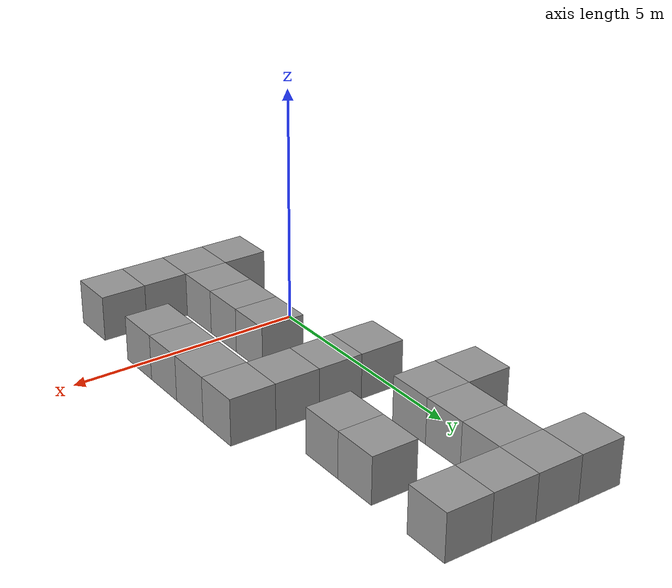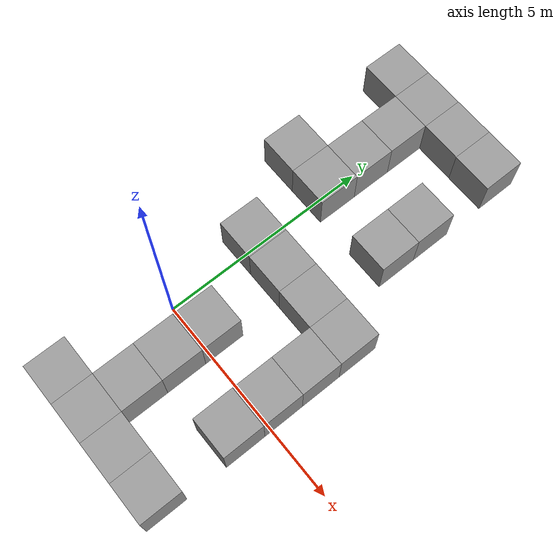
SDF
<sdf version="1.7">
 <model name="maze1">
  <link name="link_1_clone_138">
   <inertial>
    <mass>1</mass>
    <inertia>
     <ixx>0.166667</ixx>
     <ixy>0</ixy>
     <ixz>0</ixz>
     <iyy>0.166667</iyy>
     <iyz>0</iyz>
     <izz>0.166667</izz>
    </inertia>
   </inertial>
   <pose>2.75382 0.374651 0 0 -0 0</pose>
   <visual name="visual">
    <geometry><box><size>1 1 1</size></box></geometry>
    <material>
     <lighting>1</lighting>
     <script><uri>file://media/materials/scripts/gazebo.material</uri><name>Gazebo/Grey</name></script>
     <shader type="pixel"><normal_map>__default__</normal_map></shader>
     <ambient>0.3 0.3 0.3 1</ambient>
     <diffuse>0.7 0.7 0.7 1</diffuse>
     <specular>0.01 0.01 0.01 1</specular>
     <emissive>0 0 0 1</emissive>
    </material>
   </visual>
   <collision name="collision">
    <geometry><box><size>1 1 1</size></box></geometry>
    <surface>
     <friction>
      <ode><mu>1</mu><mu2>1</mu2><fdir1>0 0 0</fdir1><slip1>0</slip1><slip2>0</slip2></ode>
      <torsional>
       <coefficient>1</coefficient>
       <patch_radius>0</patch_radius>
       <surface_radius>0</surface_radius>
       <use_patch_radius>1</use_patch_radius>
       <ode><slip>0</slip></ode>
      </torsional>
     </friction>
     <bounce><restitution_coefficient>0</restitution_coefficient><threshold>1e+06</threshold></bounce>
     <contact>
      <collide_without_contact>0</collide_without_contact>
      <collide_without_contact_bitmask>1</collide_without_contact_bitmask>
      <collide_bitmask>1</collide_bitmask>
      <ode>
       <soft_cfm>0</soft_cfm>
       <soft_erp>0.2</soft_erp>
       <kp>1e+13</kp>
       <kd>1</kd>
       <max_vel>0.01</max_vel>
       <min_depth>0</min_depth>
      </ode>
      <bullet>
       <split_impulse>1</split_impulse>
       <split_impulse_penetration_threshold>-0.01</split_impulse_penetration_threshold>
       <soft_cfm>0</soft_cfm>
       <soft_erp>0.2</soft_erp>
       <kp>1e+13</kp>
       <kd>1</kd>
      </bullet>
     </contact>
    </surface>
   </collision>
  </link>
  <link name="link_1_clone_139">
   <inertial>
    <mass>1</mass>
    <inertia>
     <ixx>0.166667</ixx>
     <ixy>0</ixy>
     <ixz>0</ixz>
     <iyy>0.166667</iyy>
     <iyz>0</iyz>
     <izz>0.166667</izz>
    </inertia>
   </inertial>
   <pose>2.75382 1.37465 0 0 -0 0</pose>
   <visual name="visual">
    <geometry><box><size>1 1 1</size></box></geometry>
    <material>
     <lighting>1</lighting>
     <script><uri>file://media/materials/scripts/gazebo.material</uri><name>Gazebo/Grey</name></script>
     <shader type="pixel"><normal_map>__default__</normal_map></shader>
     <ambient>0.3 0.3 0.3 1</ambient>
     <diffuse>0.7 0.7 0.7 1</diffuse>
     <specular>0.01 0.01 0.01 1</specular>
     <emissive>0 0 0 1</emissive>
    </material>
   </visual>
   <collision name="collision">
    <geometry><box><size>1 1 1</size></box></geometry>
    <surface>
     <friction>
      <ode><mu>1</mu><mu2>1</mu2><fdir1>0 0 0</fdir1><slip1>0</slip1><slip2>0</slip2></ode>
      <torsional>
       <coefficient>1</coefficient>
       <patch_radius>0</patch_radius>
       <surface_radius>0</surface_radius>
       <use_patch_radius>1</use_patch_radius>
       <ode><slip>0</slip></ode>
      </torsional>
     </friction>
     <bounce><restitution_coefficient>0</restitution_coefficient><threshold>1e+06</threshold></bounce>
     <contact>
      <collide_without_contact>0</collide_without_contact>
      <collide_without_contact_bitmask>1</collide_without_contact_bitmask>
      <collide_bitmask>1</collide_bitmask>
      <ode>
       <soft_cfm>0</soft_cfm>
       <soft_erp>0.2</soft_erp>
       <kp>1e+13</kp>
       <kd>1</kd>
       <max_vel>0.01</max_vel>
       <min_depth>0</min_depth>
      </ode>
      <bullet>
       <split_impulse>1</split_impulse>
       <split_impulse_penetration_threshold>-0.01</split_impulse_penetration_threshold>
       <soft_cfm>0</soft_cfm>
       <soft_erp>0.2</soft_erp>
       <kp>1e+13</kp>
       <kd>1</kd>
      </bullet>
     </contact>
    </surface>
   </collision>
  </link>
  <link name="link_1_clone_140">
   <inertial>
    <mass>1</mass>
    <inertia>
     <ixx>0.166667</ixx>
     <ixy>0</ixy>
     <ixz>0</ixz>
     <iyy>0.166667</iyy>
     <iyz>0</iyz>
     <izz>0.166667</izz>
    </inertia>
   </inertial>
   <pose>2.75382 2.37465 0 0 -0 0</pose>
   <visual name="visual">
    <geometry><box><size>1 1 1</size></box></geometry>
    <material>
     <lighting>1</lighting>
     <script><uri>file://media/materials/scripts/gazebo.material</uri><name>Gazebo/Grey</name></script>
     <shader type="pixel"><normal_map>__default__</normal_map></shader>
     <ambient>0.3 0.3 0.3 1</ambient>
     <diffuse>0.7 0.7 0.7 1</diffuse>
     <specular>0.01 0.01 0.01 1</specular>
     <emissive>0 0 0 1</emissive>
    </material>
   </visual>
   <collision name="collision">
    <geometry><box><size>1 1 1</size></box></geometry>
    <surface>
     <friction>
      <ode><mu>1</mu><mu2>1</mu2><fdir1>0 0 0</fdir1><slip1>0</slip1><slip2>0</slip2></ode>
      <torsional>
       <coefficient>1</coefficient>
       <patch_radius>0</patch_radius>
       <surface_radius>0</surface_radius>
       <use_patch_radius>1</use_patch_radius>
       <ode><slip>0</slip></ode>
      </torsional>
     </friction>
     <bounce><restitution_coefficient>0</restitution_coefficient><threshold>1e+06</threshold></bounce>
     <contact>
      <collide_without_contact>0</collide_without_contact>
      <collide_without_contact_bitmask>1</collide_without_contact_bitmask>
      <collide_bitmask>1</collide_bitmask>
      <ode>
       <soft_cfm>0</soft_cfm>
       <soft_erp>0.2</soft_erp>
       <kp>1e+13</kp>
       <kd>1</kd>
       <max_vel>0.01</max_vel>
       <min_depth>0</min_depth>
      </ode>
      <bullet>
       <split_impulse>1</split_impulse>
       <split_impulse_penetration_threshold>-0.01</split_impulse_penetration_threshold>
       <soft_cfm>0</soft_cfm>
       <soft_erp>0.2</soft_erp>
       <kp>1e+13</kp>
       <kd>1</kd>
      </bullet>
     </contact>
    </surface>
   </collision>
  </link>
  <link name="link_1_clone_141">
   <inertial>
    <mass>1</mass>
    <inertia>
     <ixx>0.166667</ixx>
     <ixy>0</ixy>
     <ixz>0</ixz>
     <iyy>0.166667</iyy>
     <iyz>0</iyz>
     <izz>0.166667</izz>
    </inertia>
   </inertial>
   <pose>1.75382 2.37465 0 0 -0 0</pose>
   <visual name="visual">
    <geometry><box><size>1 1 1</size></box></geometry>
    <material>
     <lighting>1</lighting>
     <script><uri>file://media/materials/scripts/gazebo.material</uri><name>Gazebo/Grey</name></script>
     <shader type="pixel"><normal_map>__default__</normal_map></shader>
     <ambient>0.3 0.3 0.3 1</ambient>
     <diffuse>0.7 0.7 0.7 1</diffuse>
     <specular>0.01 0.01 0.01 1</specular>
     <emissive>0 0 0 1</emissive>
    </material>
   </visual>
   <collision name="collision">
    <geometry><box><size>1 1 1</size></box></geometry>
    <surface>
     <friction>
      <ode><mu>1</mu><mu2>1</mu2><fdir1>0 0 0</fdir1><slip1>0</slip1><slip2>0</slip2></ode>
      <torsional>
       <coefficient>1</coefficient>
       <patch_radius>0</patch_radius>
       <surface_radius>0</surface_radius>
       <use_patch_radius>1</use_patch_radius>
       <ode><slip>0</slip></ode>
      </torsional>
     </friction>
     <bounce><restitution_coefficient>0</restitution_coefficient><threshold>1e+06</threshold></bounce>
     <contact>
      <collide_without_contact>0</collide_without_contact>
      <collide_without_contact_bitmask>1</collide_without_contact_bitmask>
      <collide_bitmask>1</collide_bitmask>
      <ode>
       <soft_cfm>0</soft_cfm>
       <soft_erp>0.2</soft_erp>
       <kp>1e+13</kp>
       <kd>1</kd>
       <max_vel>0.01</max_vel>
       <min_depth>0</min_depth>
      </ode>
      <bullet>
       <split_impulse>1</split_impulse>
       <split_impulse_penetration_threshold>-0.01</split_impulse_penetration_threshold>
       <soft_cfm>0</soft_cfm>
       <soft_erp>0.2</soft_erp>
       <kp>1e+13</kp>
       <kd>1</kd>
      </bullet>
     </contact>
    </surface>
   </collision>
  </link>
  <link name="link_1_clone_142">
   <inertial>
    <mass>1</mass>
    <inertia>
     <ixx>0.166667</ixx>
     <ixy>0</ixy>
     <ixz>0</ixz>
     <iyy>0.166667</iyy>
     <iyz>0</iyz>
     <izz>0.166667</izz>
    </inertia>
   </inertial>
   <pose>0.753816 2.37465 0 0 -0 0</pose>
   <visual name="visual">
    <geometry><box><size>1 1 1</size></box></geometry>
    <material>
     <lighting>1</lighting>
     <script><uri>file://media/materials/scripts/gazebo.material</uri><name>Gazebo/Grey</name></script>
     <shader type="pixel"><normal_map>__default__</normal_map></shader>
     <ambient>0.3 0.3 0.3 1</ambient>
     <diffuse>0.7 0.7 0.7 1</diffuse>
     <specular>0.01 0.01 0.01 1</specular>
     <emissive>0 0 0 1</emissive>
    </material>
   </visual>
   <collision name="collision">
    <geometry><box><size>1 1 1</size></box></geometry>
    <surface>
     <friction>
      <ode><mu>1</mu><mu2>1</mu2><fdir1>0 0 0</fdir1><slip1>0</slip1><slip2>0</slip2></ode>
      <torsional>
       <coefficient>1</coefficient>
       <patch_radius>0</patch_radius>
       <surface_radius>0</surface_radius>
       <use_patch_radius>1</use_patch_radius>
       <ode><slip>0</slip></ode>
      </torsional>
     </friction>
     <bounce><restitution_coefficient>0</restitution_coefficient><threshold>1e+06</threshold></bounce>
     <contact>
      <collide_without_contact>0</collide_without_contact>
      <collide_without_contact_bitmask>1</collide_without_contact_bitmask>
      <collide_bitmask>1</collide_bitmask>
      <ode>
       <soft_cfm>0</soft_cfm>
       <soft_erp>0.2</soft_erp>
       <kp>1e+13</kp>
       <kd>1</kd>
       <max_vel>0.01</max_vel>
       <min_depth>0</min_depth>
      </ode>
      <bullet>
       <split_impulse>1</split_impulse>
       <split_impulse_penetration_threshold>-0.01</split_impulse_penetration_threshold>
       <soft_cfm>0</soft_cfm>
       <soft_erp>0.2</soft_erp>
       <kp>1e+13</kp>
       <kd>1</kd>
      </bullet>
     </contact>
    </surface>
   </collision>
  </link>
  <link name="link_1_clone_143">
   <inertial>
    <mass>1</mass>
    <inertia>
     <ixx>0.166667</ixx>
     <ixy>0</ixy>
     <ixz>0</ixz>
     <iyy>0.166667</iyy>
     <iyz>0</iyz>
     <izz>0.166667</izz>
    </inertia>
   </inertial>
   <pose>-0.246184 2.37465 0 0 -0 0</pose>
   <visual name="visual">
    <geometry><box><size>1 1 1</size></box></geometry>
    <material>
     <lighting>1</lighting>
     <script><uri>file://media/materials/scripts/gazebo.material</uri><name>Gazebo/Grey</name></script>
     <shader type="pixel"><normal_map>__default__</normal_map></shader>
     <ambient>0.3 0.3 0.3 1</ambient>
     <diffuse>0.7 0.7 0.7 1</diffuse>
     <specular>0.01 0.01 0.01 1</specular>
     <emissive>0 0 0 1</emissive>
    </material>
   </visual>
   <collision name="collision">
    <geometry><box><size>1 1 1</size></box></geometry>
    <surface>
     <friction>
      <ode><mu>1</mu><mu2>1</mu2><fdir1>0 0 0</fdir1><slip1>0</slip1><slip2>0</slip2></ode>
      <torsional>
       <coefficient>1</coefficient>
       <patch_radius>0</patch_radius>
       <surface_radius>0</surface_radius>
       <use_patch_radius>1</use_patch_radius>
       <ode><slip>0</slip></ode>
      </torsional>
     </friction>
     <bounce><restitution_coefficient>0</restitution_coefficient><threshold>1e+06</threshold></bounce>
     <contact>
      <collide_without_contact>0</collide_without_contact>
      <collide_without_contact_bitmask>1</collide_without_contact_bitmask>
      <collide_bitmask>1</collide_bitmask>
      <ode>
       <soft_cfm>0</soft_cfm>
       <soft_erp>0.2</soft_erp>
       <kp>1e+13</kp>
       <kd>1</kd>
       <max_vel>0.01</max_vel>
       <min_depth>0</min_depth>
      </ode>
      <bullet>
       <split_impulse>1</split_impulse>
       <split_impulse_penetration_threshold>-0.01</split_impulse_penetration_threshold>
       <soft_cfm>0</soft_cfm>
       <soft_erp>0.2</soft_erp>
       <kp>1e+13</kp>
       <kd>1</kd>
      </bullet>
     </contact>
    </surface>
   </collision>
  </link>
  <link name="link_1_clone_167">
   <inertial>
    <mass>1</mass>
    <inertia>
     <ixx>0.166667</ixx>
     <ixy>0</ixy>
     <ixz>0</ixz>
     <iyy>0.166667</iyy>
     <iyz>0</iyz>
     <izz>0.166667</izz>
    </inertia>
   </inertial>
   <pose>2.75382 -0.625349 0 0 -0 0</pose>
   <visual name="visual">
    <geometry><box><size>1 1 1</size></box></geometry>
    <material>
     <lighting>1</lighting>
     <script><uri>file://media/materials/scripts/gazebo.material</uri><name>Gazebo/Grey</name></script>
     <shader type="pixel"><normal_map>__default__</normal_map></shader>
     <ambient>0.3 0.3 0.3 1</ambient>
     <diffuse>0.7 0.7 0.7 1</diffuse>
     <specular>0.01 0.01 0.01 1</specular>
     <emissive>0 0 0 1</emissive>
    </material>
   </visual>
   <collision name="collision">
    <geometry><box><size>1 1 1</size></box></geometry>
    <surface>
     <friction>
      <ode><mu>1</mu><mu2>1</mu2><fdir1>0 0 0</fdir1><slip1>0</slip1><slip2>0</slip2></ode>
      <torsional>
       <coefficient>1</coefficient>
       <patch_radius>0</patch_radius>
       <surface_radius>0</surface_radius>
       <use_patch_radius>1</use_patch_radius>
       <ode><slip>0</slip></ode>
      </torsional>
     </friction>
     <bounce><restitution_coefficient>0</restitution_coefficient><threshold>1e+06</threshold></bounce>
     <contact>
      <collide_without_contact>0</collide_without_contact>
      <collide_without_contact_bitmask>1</collide_without_contact_bitmask>
      <collide_bitmask>1</collide_bitmask>
      <ode>
       <soft_cfm>0</soft_cfm>
       <soft_erp>0.2</soft_erp>
       <kp>1e+13</kp>
       <kd>1</kd>
       <max_vel>0.01</max_vel>
       <min_depth>0</min_depth>
      </ode>
      <bullet>
       <split_impulse>1</split_impulse>
       <split_impulse_penetration_threshold>-0.01</split_impulse_penetration_threshold>
       <soft_cfm>0</soft_cfm>
       <soft_erp>0.2</soft_erp>
       <kp>1e+13</kp>
       <kd>1</kd>
      </bullet>
     </contact>
    </surface>
   </collision>
  </link>
  <link name="link_1_clone_169">
   <inertial>
    <mass>1</mass>
    <inertia>
     <ixx>0.166667</ixx>
     <ixy>0</ixy>
     <ixz>0</ixz>
     <iyy>0.166667</iyy>
     <iyz>0</iyz>
     <izz>0.166667</izz>
    </inertia>
   </inertial>
   <pose>2.75382 -2.62535 0 0 -0 0</pose>
   <visual name="visual">
    <geometry><box><size>1 1 1</size></box></geometry>
    <material>
     <lighting>1</lighting>
     <script><uri>file://media/materials/scripts/gazebo.material</uri><name>Gazebo/Grey</name></script>
     <shader type="pixel"><normal_map>__default__</normal_map></shader>
     <ambient>0.3 0.3 0.3 1</ambient>
     <diffuse>0.7 0.7 0.7 1</diffuse>
     <specular>0.01 0.01 0.01 1</specular>
     <emissive>0 0 0 1</emissive>
    </material>
   </visual>
   <collision name="collision">
    <geometry><box><size>1 1 1</size></box></geometry>
    <surface>
     <friction>
      <ode><mu>1</mu><mu2>1</mu2><fdir1>0 0 0</fdir1><slip1>0</slip1><slip2>0</slip2></ode>
      <torsional>
       <coefficient>1</coefficient>
       <patch_radius>0</patch_radius>
       <surface_radius>0</surface_radius>
       <use_patch_radius>1</use_patch_radius>
       <ode><slip>0</slip></ode>
      </torsional>
     </friction>
     <bounce><restitution_coefficient>0</restitution_coefficient><threshold>1e+06</threshold></bounce>
     <contact>
      <collide_without_contact>0</collide_without_contact>
      <collide_without_contact_bitmask>1</collide_without_contact_bitmask>
      <collide_bitmask>1</collide_bitmask>
      <ode>
       <soft_cfm>0</soft_cfm>
       <soft_erp>0.2</soft_erp>
       <kp>1e+13</kp>
       <kd>1</kd>
       <max_vel>0.01</max_vel>
       <min_depth>0</min_depth>
      </ode>
      <bullet>
       <split_impulse>1</split_impulse>
       <split_impulse_penetration_threshold>-0.01</split_impulse_penetration_threshold>
       <soft_cfm>0</soft_cfm>
       <soft_erp>0.2</soft_erp>
       <kp>1e+13</kp>
       <kd>1</kd>
      </bullet>
     </contact>
    </surface>
   </collision>
  </link>
  <link name="link_1_clone_172">
   <inertial>
    <mass>1</mass>
    <inertia>
     <ixx>0.166667</ixx>
     <ixy>0</ixy>
     <ixz>0</ixz>
     <iyy>0.166667</iyy>
     <iyz>0</iyz>
     <izz>0.166667</izz>
    </inertia>
   </inertial>
   <pose>1.75382 -2.62535 0 0 -0 0</pose>
   <visual name="visual">
    <geometry><box><size>1 1 1</size></box></geometry>
    <material>
     <lighting>1</lighting>
     <script><uri>file://media/materials/scripts/gazebo.material</uri><name>Gazebo/Grey</name></script>
     <shader type="pixel"><normal_map>__default__</normal_map></shader>
     <ambient>0.3 0.3 0.3 1</ambient>
     <diffuse>0.7 0.7 0.7 1</diffuse>
     <specular>0.01 0.01 0.01 1</specular>
     <emissive>0 0 0 1</emissive>
    </material>
   </visual>
   <collision name="collision">
    <geometry><box><size>1 1 1</size></box></geometry>
    <surface>
     <friction>
      <ode><mu>1</mu><mu2>1</mu2><fdir1>0 0 0</fdir1><slip1>0</slip1><slip2>0</slip2></ode>
      <torsional>
       <coefficient>1</coefficient>
       <patch_radius>0</patch_radius>
       <surface_radius>0</surface_radius>
       <use_patch_radius>1</use_patch_radius>
       <ode><slip>0</slip></ode>
      </torsional>
     </friction>
     <bounce><restitution_coefficient>0</restitution_coefficient><threshold>1e+06</threshold></bounce>
     <contact>
      <collide_without_contact>0</collide_without_contact>
      <collide_without_contact_bitmask>1</collide_without_contact_bitmask>
      <collide_bitmask>1</collide_bitmask>
      <ode>
       <soft_cfm>0</soft_cfm>
       <soft_erp>0.2</soft_erp>
       <kp>1e+13</kp>
       <kd>1</kd>
       <max_vel>0.01</max_vel>
       <min_depth>0</min_depth>
      </ode>
      <bullet>
       <split_impulse>1</split_impulse>
       <split_impulse_penetration_threshold>-0.01</split_impulse_penetration_threshold>
       <soft_cfm>0</soft_cfm>
       <soft_erp>0.2</soft_erp>
       <kp>1e+13</kp>
       <kd>1</kd>
      </bullet>
     </contact>
    </surface>
   </collision>
  </link>
  <link name="link_1_clone_173">
   <inertial>
    <mass>1</mass>
    <inertia>
     <ixx>0.166667</ixx>
     <ixy>0</ixy>
     <ixz>0</ixz>
     <iyy>0.166667</iyy>
     <iyz>0</iyz>
     <izz>0.166667</izz>
    </inertia>
   </inertial>
   <pose>0.753816 -2.62535 -0 0 -0 0</pose>
   <visual name="visual">
    <geometry><box><size>1 1 1</size></box></geometry>
    <material>
     <lighting>1</lighting>
     <script><uri>file://media/materials/scripts/gazebo.material</uri><name>Gazebo/Grey</name></script>
     <shader type="pixel"><normal_map>__default__</normal_map></shader>
     <ambient>0.3 0.3 0.3 1</ambient>
     <diffuse>0.7 0.7 0.7 1</diffuse>
     <specular>0.01 0.01 0.01 1</specular>
     <emissive>0 0 0 1</emissive>
    </material>
   </visual>
   <collision name="collision">
    <geometry><box><size>1 1 1</size></box></geometry>
    <surface>
     <friction>
      <ode><mu>1</mu><mu2>1</mu2><fdir1>0 0 0</fdir1><slip1>0</slip1><slip2>0</slip2></ode>
      <torsional>
       <coefficient>1</coefficient>
       <patch_radius>0</patch_radius>
       <surface_radius>0</surface_radius>
       <use_patch_radius>1</use_patch_radius>
       <ode><slip>0</slip></ode>
      </torsional>
     </friction>
     <bounce><restitution_coefficient>0</restitution_coefficient><threshold>1e+06</threshold></bounce>
     <contact>
      <collide_without_contact>0</collide_without_contact>
      <collide_without_contact_bitmask>1</collide_without_contact_bitmask>
      <collide_bitmask>1</collide_bitmask>
      <ode>
       <soft_cfm>0</soft_cfm>
       <soft_erp>0.2</soft_erp>
       <kp>1e+13</kp>
       <kd>1</kd>
       <max_vel>0.01</max_vel>
       <min_depth>0</min_depth>
      </ode>
      <bullet>
       <split_impulse>1</split_impulse>
       <split_impulse_penetration_threshold>-0.01</split_impulse_penetration_threshold>
       <soft_cfm>0</soft_cfm>
       <soft_erp>0.2</soft_erp>
       <kp>1e+13</kp>
       <kd>1</kd>
      </bullet>
     </contact>
    </surface>
   </collision>
  </link>
  <link name="link_1_clone_174">
   <inertial>
    <mass>1</mass>
    <inertia>
     <ixx>0.166667</ixx>
     <ixy>0</ixy>
     <ixz>0</ixz>
     <iyy>0.166667</iyy>
     <iyz>0</iyz>
     <izz>0.166667</izz>
    </inertia>
   </inertial>
   <pose>-0.246184 -2.62535 -0 0 -0 0</pose>
   <visual name="visual">
    <geometry><box><size>1 1 1</size></box></geometry>
    <material>
     <lighting>1</lighting>
     <script><uri>file://media/materials/scripts/gazebo.material</uri><name>Gazebo/Grey</name></script>
     <shader type="pixel"><normal_map>__default__</normal_map></shader>
     <ambient>0.3 0.3 0.3 1</ambient>
     <diffuse>0.7 0.7 0.7 1</diffuse>
     <specular>0.01 0.01 0.01 1</specular>
     <emissive>0 0 0 1</emissive>
    </material>
   </visual>
   <collision name="collision">
    <geometry><box><size>1 1 1</size></box></geometry>
    <surface>
     <friction>
      <ode><mu>1</mu><mu2>1</mu2><fdir1>0 0 0</fdir1><slip1>0</slip1><slip2>0</slip2></ode>
      <torsional>
       <coefficient>1</coefficient>
       <patch_radius>0</patch_radius>
       <surface_radius>0</surface_radius>
       <use_patch_radius>1</use_patch_radius>
       <ode><slip>0</slip></ode>
      </torsional>
     </friction>
     <bounce><restitution_coefficient>0</restitution_coefficient><threshold>1e+06</threshold></bounce>
     <contact>
      <collide_without_contact>0</collide_without_contact>
      <collide_without_contact_bitmask>1</collide_without_contact_bitmask>
      <collide_bitmask>1</collide_bitmask>
      <ode>
       <soft_cfm>0</soft_cfm>
       <soft_erp>0.2</soft_erp>
       <kp>1e+13</kp>
       <kd>1</kd>
       <max_vel>0.01</max_vel>
       <min_depth>0</min_depth>
      </ode>
      <bullet>
       <split_impulse>1</split_impulse>
       <split_impulse_penetration_threshold>-0.01</split_impulse_penetration_threshold>
       <soft_cfm>0</soft_cfm>
       <soft_erp>0.2</soft_erp>
       <kp>1e+13</kp>
       <kd>1</kd>
      </bullet>
     </contact>
    </surface>
   </collision>
  </link>
  <link name="link_1_clone_177">
   <inertial>
    <mass>1</mass>
    <inertia>
     <ixx>0.166667</ixx>
     <ixy>0</ixy>
     <ixz>0</ixz>
     <iyy>0.166667</iyy>
     <iyz>0</iyz>
     <izz>0.166667</izz>
    </inertia>
   </inertial>
   <pose>0.753819 0.374651 0 0 -0 0</pose>
   <visual name="visual">
    <geometry><box><size>1 1 1</size></box></geometry>
    <material>
     <lighting>1</lighting>
     <script><uri>file://media/materials/scripts/gazebo.material</uri><name>Gazebo/Grey</name></script>
     <shader type="pixel"><normal_map>__default__</normal_map></shader>
     <ambient>0.3 0.3 0.3 1</ambient>
     <diffuse>0.7 0.7 0.7 1</diffuse>
     <specular>0.01 0.01 0.01 1</specular>
     <emissive>0 0 0 1</emissive>
    </material>
   </visual>
   <collision name="collision">
    <geometry><box><size>1 1 1</size></box></geometry>
    <surface>
     <friction>
      <ode><mu>1</mu><mu2>1</mu2><fdir1>0 0 0</fdir1><slip1>0</slip1><slip2>0</slip2></ode>
      <torsional>
       <coefficient>1</coefficient>
       <patch_radius>0</patch_radius>
       <surface_radius>0</surface_radius>
       <use_patch_radius>1</use_patch_radius>
       <ode><slip>0</slip></ode>
      </torsional>
     </friction>
     <bounce><restitution_coefficient>0</restitution_coefficient><threshold>1e+06</threshold></bounce>
     <contact>
      <collide_without_contact>0</collide_without_contact>
      <collide_without_contact_bitmask>1</collide_without_contact_bitmask>
      <collide_bitmask>1</collide_bitmask>
      <ode>
       <soft_cfm>0</soft_cfm>
       <soft_erp>0.2</soft_erp>
       <kp>1e+13</kp>
       <kd>1</kd>
       <max_vel>0.01</max_vel>
       <min_depth>0</min_depth>
      </ode>
      <bullet>
       <split_impulse>1</split_impulse>
       <split_impulse_penetration_threshold>-0.01</split_impulse_penetration_threshold>
       <soft_cfm>0</soft_cfm>
       <soft_erp>0.2</soft_erp>
       <kp>1e+13</kp>
       <kd>1</kd>
      </bullet>
     </contact>
    </surface>
   </collision>
  </link>
  <link name="link_1_clone_178">
   <inertial>
    <mass>1</mass>
    <inertia>
     <ixx>0.166667</ixx>
     <ixy>0</ixy>
     <ixz>0</ixz>
     <iyy>0.166667</iyy>
     <iyz>0</iyz>
     <izz>0.166667</izz>
    </inertia>
   </inertial>
   <pose>0.753816 -0.625349 0 0 -0 0</pose>
   <visual name="visual">
    <geometry><box><size>1 1 1</size></box></geometry>
    <material>
     <lighting>1</lighting>
     <script><uri>file://media/materials/scripts/gazebo.material</uri><name>Gazebo/Grey</name></script>
     <shader type="pixel"><normal_map>__default__</normal_map></shader>
     <ambient>0.3 0.3 0.3 1</ambient>
     <diffuse>0.7 0.7 0.7 1</diffuse>
     <specular>0.01 0.01 0.01 1</specular>
     <emissive>0 0 0 1</emissive>
    </material>
   </visual>
   <collision name="collision">
    <geometry><box><size>1 1 1</size></box></geometry>
    <surface>
     <friction>
      <ode><mu>1</mu><mu2>1</mu2><fdir1>0 0 0</fdir1><slip1>0</slip1><slip2>0</slip2></ode>
      <torsional>
       <coefficient>1</coefficient>
       <patch_radius>0</patch_radius>
       <surface_radius>0</surface_radius>
       <use_patch_radius>1</use_patch_radius>
       <ode><slip>0</slip></ode>
      </torsional>
     </friction>
     <bounce><restitution_coefficient>0</restitution_coefficient><threshold>1e+06</threshold></bounce>
     <contact>
      <collide_without_contact>0</collide_without_contact>
      <collide_without_contact_bitmask>1</collide_without_contact_bitmask>
      <collide_bitmask>1</collide_bitmask>
      <ode>
       <soft_cfm>0</soft_cfm>
       <soft_erp>0.2</soft_erp>
       <kp>1e+13</kp>
       <kd>1</kd>
       <max_vel>0.01</max_vel>
       <min_depth>0</min_depth>
      </ode>
      <bullet>
       <split_impulse>1</split_impulse>
       <split_impulse_penetration_threshold>-0.01</split_impulse_penetration_threshold>
       <soft_cfm>0</soft_cfm>
       <soft_erp>0.2</soft_erp>
       <kp>1e+13</kp>
       <kd>1</kd>
      </bullet>
     </contact>
    </surface>
   </collision>
  </link>
  <link name="link_1_clone_179">
   <inertial>
    <mass>1</mass>
    <inertia>
     <ixx>0.166667</ixx>
     <ixy>0</ixy>
     <ixz>0</ixz>
     <iyy>0.166667</iyy>
     <iyz>0</iyz>
     <izz>0.166667</izz>
    </inertia>
   </inertial>
   <pose>0.753816 -1.62535 0 0 -0 0</pose>
   <visual name="visual">
    <geometry><box><size>1 1 1</size></box></geometry>
    <material>
     <lighting>1</lighting>
     <script><uri>file://media/materials/scripts/gazebo.material</uri><name>Gazebo/Grey</name></script>
     <shader type="pixel"><normal_map>__default__</normal_map></shader>
     <ambient>0.3 0.3 0.3 1</ambient>
     <diffuse>0.7 0.7 0.7 1</diffuse>
     <specular>0.01 0.01 0.01 1</specular>
     <emissive>0 0 0 1</emissive>
    </material>
   </visual>
   <collision name="collision">
    <geometry><box><size>1 1 1</size></box></geometry>
    <surface>
     <friction>
      <ode><mu>1</mu><mu2>1</mu2><fdir1>0 0 0</fdir1><slip1>0</slip1><slip2>0</slip2></ode>
      <torsional>
       <coefficient>1</coefficient>
       <patch_radius>0</patch_radius>
       <surface_radius>0</surface_radius>
       <use_patch_radius>1</use_patch_radius>
       <ode><slip>0</slip></ode>
      </torsional>
     </friction>
     <bounce><restitution_coefficient>0</restitution_coefficient><threshold>1e+06</threshold></bounce>
     <contact>
      <collide_without_contact>0</collide_without_contact>
      <collide_without_contact_bitmask>1</collide_without_contact_bitmask>
      <collide_bitmask>1</collide_bitmask>
      <ode>
       <soft_cfm>0</soft_cfm>
       <soft_erp>0.2</soft_erp>
       <kp>1e+13</kp>
       <kd>1</kd>
       <max_vel>0.01</max_vel>
       <min_depth>0</min_depth>
      </ode>
      <bullet>
       <split_impulse>1</split_impulse>
       <split_impulse_penetration_threshold>-0.01</split_impulse_penetration_threshold>
       <soft_cfm>0</soft_cfm>
       <soft_erp>0.2</soft_erp>
       <kp>1e+13</kp>
       <kd>1</kd>
      </bullet>
     </contact>
    </surface>
   </collision>
  </link>
  <link name="link_1_clone_6">
   <inertial>
    <mass>1</mass>
    <inertia>
     <ixx>0.166667</ixx>
     <ixy>0</ixy>
     <ixz>0</ixz>
     <iyy>0.166667</iyy>
     <iyz>0</iyz>
     <izz>0.166667</izz>
    </inertia>
   </inertial>
   <pose>1.75382 7.37465 0 0 -0 0</pose>
   <visual name="visual">
    <geometry><box><size>1 1 1</size></box></geometry>
    <material>
     <lighting>1</lighting>
     <script><uri>file://media/materials/scripts/gazebo.material</uri><name>Gazebo/Grey</name></script>
     <shader type="pixel"><normal_map>__default__</normal_map></shader>
     <ambient>0.3 0.3 0.3 1</ambient>
     <diffuse>0.7 0.7 0.7 1</diffuse>
     <specular>0.01 0.01 0.01 1</specular>
     <emissive>0 0 0 1</emissive>
    </material>
   </visual>
   <collision name="collision">
    <geometry><box><size>1 1 1</size></box></geometry>
    <surface>
     <friction>
      <ode><mu>1</mu><mu2>1</mu2><fdir1>0 0 0</fdir1><slip1>0</slip1><slip2>0</slip2></ode>
      <torsional>
       <coefficient>1</coefficient>
       <patch_radius>0</patch_radius>
       <surface_radius>0</surface_radius>
       <use_patch_radius>1</use_patch_radius>
       <ode><slip>0</slip></ode>
      </torsional>
     </friction>
     <bounce><restitution_coefficient>0</restitution_coefficient><threshold>1e+06</threshold></bounce>
     <contact>
      <collide_without_contact>0</collide_without_contact>
      <collide_without_contact_bitmask>1</collide_without_contact_bitmask>
      <collide_bitmask>1</collide_bitmask>
      <ode>
       <soft_cfm>0</soft_cfm>
       <soft_erp>0.2</soft_erp>
       <kp>1e+13</kp>
       <kd>1</kd>
       <max_vel>0.01</max_vel>
       <min_depth>0</min_depth>
      </ode>
      <bullet>
       <split_impulse>1</split_impulse>
       <split_impulse_penetration_threshold>-0.01</split_impulse_penetration_threshold>
       <soft_cfm>0</soft_cfm>
       <soft_erp>0.2</soft_erp>
       <kp>1e+13</kp>
       <kd>1</kd>
      </bullet>
     </contact>
    </surface>
   </collision>
  </link>
  <link name="link_1_clone_7">
   <inertial>
    <mass>1</mass>
    <inertia>
     <ixx>0.166667</ixx>
     <ixy>0</ixy>
     <ixz>0</ixz>
     <iyy>0.166667</iyy>
     <iyz>0</iyz>
     <izz>0.166667</izz>
    </inertia>
   </inertial>
   <pose>0.753816 7.37465 0 0 -0 0</pose>
   <visual name="visual">
    <geometry><box><size>1 1 1</size></box></geometry>
    <material>
     <lighting>1</lighting>
     <script><uri>file://media/materials/scripts/gazebo.material</uri><name>Gazebo/Grey</name></script>
     <shader type="pixel"><normal_map>__default__</normal_map></shader>
     <ambient>0.3 0.3 0.3 1</ambient>
     <diffuse>0.7 0.7 0.7 1</diffuse>
     <specular>0.01 0.01 0.01 1</specular>
     <emissive>0 0 0 1</emissive>
    </material>
   </visual>
   <collision name="collision">
    <geometry><box><size>1 1 1</size></box></geometry>
    <surface>
     <friction>
      <ode><mu>1</mu><mu2>1</mu2><fdir1>0 0 0</fdir1><slip1>0</slip1><slip2>0</slip2></ode>
      <torsional>
       <coefficient>1</coefficient>
       <patch_radius>0</patch_radius>
       <surface_radius>0</surface_radius>
       <use_patch_radius>1</use_patch_radius>
       <ode><slip>0</slip></ode>
      </torsional>
     </friction>
     <bounce><restitution_coefficient>0</restitution_coefficient><threshold>1e+06</threshold></bounce>
     <contact>
      <collide_without_contact>0</collide_without_contact>
      <collide_without_contact_bitmask>1</collide_without_contact_bitmask>
      <collide_bitmask>1</collide_bitmask>
      <ode>
       <soft_cfm>0</soft_cfm>
       <soft_erp>0.2</soft_erp>
       <kp>1e+13</kp>
       <kd>1</kd>
       <max_vel>0.01</max_vel>
       <min_depth>0</min_depth>
      </ode>
      <bullet>
       <split_impulse>1</split_impulse>
       <split_impulse_penetration_threshold>-0.01</split_impulse_penetration_threshold>
       <soft_cfm>0</soft_cfm>
       <soft_erp>0.2</soft_erp>
       <kp>1e+13</kp>
       <kd>1</kd>
      </bullet>
     </contact>
    </surface>
   </collision>
  </link>
  <link name="link_1_clone_8">
   <inertial>
    <mass>1</mass>
    <inertia>
     <ixx>0.166667</ixx>
     <ixy>0</ixy>
     <ixz>0</ixz>
     <iyy>0.166667</iyy>
     <iyz>0</iyz>
     <izz>0.166667</izz>
    </inertia>
   </inertial>
   <pose>-0.246184 7.37465 0 0 -0 0</pose>
   <visual name="visual">
    <geometry><box><size>1 1 1</size></box></geometry>
    <material>
     <lighting>1</lighting>
     <script><uri>file://media/materials/scripts/gazebo.material</uri><name>Gazebo/Grey</name></script>
     <shader type="pixel"><normal_map>__default__</normal_map></shader>
     <ambient>0.3 0.3 0.3 1</ambient>
     <diffuse>0.7 0.7 0.7 1</diffuse>
     <specular>0.01 0.01 0.01 1</specular>
     <emissive>0 0 0 1</emissive>
    </material>
   </visual>
   <collision name="collision">
    <geometry><box><size>1 1 1</size></box></geometry>
    <surface>
     <friction>
      <ode><mu>1</mu><mu2>1</mu2><fdir1>0 0 0</fdir1><slip1>0</slip1><slip2>0</slip2></ode>
      <torsional>
       <coefficient>1</coefficient>
       <patch_radius>0</patch_radius>
       <surface_radius>0</surface_radius>
       <use_patch_radius>1</use_patch_radius>
       <ode><slip>0</slip></ode>
      </torsional>
     </friction>
     <bounce><restitution_coefficient>0</restitution_coefficient><threshold>1e+06</threshold></bounce>
     <contact>
      <collide_without_contact>0</collide_without_contact>
      <collide_without_contact_bitmask>1</collide_without_contact_bitmask>
      <collide_bitmask>1</collide_bitmask>
      <ode>
       <soft_cfm>0</soft_cfm>
       <soft_erp>0.2</soft_erp>
       <kp>1e+13</kp>
       <kd>1</kd>
       <max_vel>0.01</max_vel>
       <min_depth>0</min_depth>
      </ode>
      <bullet>
       <split_impulse>1</split_impulse>
       <split_impulse_penetration_threshold>-0.01</split_impulse_penetration_threshold>
       <soft_cfm>0</soft_cfm>
       <soft_erp>0.2</soft_erp>
       <kp>1e+13</kp>
       <kd>1</kd>
      </bullet>
     </contact>
    </surface>
   </collision>
  </link>
  <link name="link_1_clone_87">
   <inertial>
    <mass>1</mass>
    <inertia>
     <ixx>0.166667</ixx>
     <ixy>0</ixy>
     <ixz>0</ixz>
     <iyy>0.166667</iyy>
     <iyz>0</iyz>
     <izz>0.166667</izz>
    </inertia>
   </inertial>
   <pose>1.75382 5.37465 0 0 -0 0</pose>
   <visual name="visual">
    <geometry><box><size>1 1 1</size></box></geometry>
    <material>
     <lighting>1</lighting>
     <script><uri>file://media/materials/scripts/gazebo.material</uri><name>Gazebo/Grey</name></script>
     <shader type="pixel"><normal_map>__default__</normal_map></shader>
     <ambient>0.3 0.3 0.3 1</ambient>
     <diffuse>0.7 0.7 0.7 1</diffuse>
     <specular>0.01 0.01 0.01 1</specular>
     <emissive>0 0 0 1</emissive>
    </material>
   </visual>
   <collision name="collision">
    <geometry><box><size>1 1 1</size></box></geometry>
    <surface>
     <friction>
      <ode><mu>1</mu><mu2>1</mu2><fdir1>0 0 0</fdir1><slip1>0</slip1><slip2>0</slip2></ode>
      <torsional>
       <coefficient>1</coefficient>
       <patch_radius>0</patch_radius>
       <surface_radius>0</surface_radius>
       <use_patch_radius>1</use_patch_radius>
       <ode><slip>0</slip></ode>
      </torsional>
     </friction>
     <bounce><restitution_coefficient>0</restitution_coefficient><threshold>1e+06</threshold></bounce>
     <contact>
      <collide_without_contact>0</collide_without_contact>
      <collide_without_contact_bitmask>1</collide_without_contact_bitmask>
      <collide_bitmask>1</collide_bitmask>
      <ode>
       <soft_cfm>0</soft_cfm>
       <soft_erp>0.2</soft_erp>
       <kp>1e+13</kp>
       <kd>1</kd>
       <max_vel>0.01</max_vel>
       <min_depth>0</min_depth>
      </ode>
      <bullet>
       <split_impulse>1</split_impulse>
       <split_impulse_penetration_threshold>-0.01</split_impulse_penetration_threshold>
       <soft_cfm>0</soft_cfm>
       <soft_erp>0.2</soft_erp>
       <kp>1e+13</kp>
       <kd>1</kd>
      </bullet>
     </contact>
    </surface>
   </collision>
  </link>
  <link name="link_1_clone_88">
   <inertial>
    <mass>1</mass>
    <inertia>
     <ixx>0.166667</ixx>
     <ixy>0</ixy>
     <ixz>0</ixz>
     <iyy>0.166667</iyy>
     <iyz>0</iyz>
     <izz>0.166667</izz>
    </inertia>
   </inertial>
   <pose>1.75382 4.37465 0 0 -0 0</pose>
   <visual name="visual">
    <geometry><box><size>1 1 1</size></box></geometry>
    <material>
     <lighting>1</lighting>
     <script><uri>file://media/materials/scripts/gazebo.material</uri><name>Gazebo/Grey</name></script>
     <shader type="pixel"><normal_map>__default__</normal_map></shader>
     <ambient>0.3 0.3 0.3 1</ambient>
     <diffuse>0.7 0.7 0.7 1</diffuse>
     <specular>0.01 0.01 0.01 1</specular>
     <emissive>0 0 0 1</emissive>
    </material>
   </visual>
   <collision name="collision">
    <geometry><box><size>1 1 1</size></box></geometry>
    <surface>
     <friction>
      <ode><mu>1</mu><mu2>1</mu2><fdir1>0 0 0</fdir1><slip1>0</slip1><slip2>0</slip2></ode>
      <torsional>
       <coefficient>1</coefficient>
       <patch_radius>0</patch_radius>
       <surface_radius>0</surface_radius>
       <use_patch_radius>1</use_patch_radius>
       <ode><slip>0</slip></ode>
      </torsional>
     </friction>
     <bounce><restitution_coefficient>0</restitution_coefficient><threshold>1e+06</threshold></bounce>
     <contact>
      <collide_without_contact>0</collide_without_contact>
      <collide_without_contact_bitmask>1</collide_without_contact_bitmask>
      <collide_bitmask>1</collide_bitmask>
      <ode>
       <soft_cfm>0</soft_cfm>
       <soft_erp>0.2</soft_erp>
       <kp>1e+13</kp>
       <kd>1</kd>
       <max_vel>0.01</max_vel>
       <min_depth>0</min_depth>
      </ode>
      <bullet>
       <split_impulse>1</split_impulse>
       <split_impulse_penetration_threshold>-0.01</split_impulse_penetration_threshold>
       <soft_cfm>0</soft_cfm>
       <soft_erp>0.2</soft_erp>
       <kp>1e+13</kp>
       <kd>1</kd>
      </bullet>
     </contact>
    </surface>
   </collision>
  </link>
  <link name="link_1_clone_89">
   <inertial>
    <mass>1</mass>
    <inertia>
     <ixx>0.166667</ixx>
     <ixy>0</ixy>
     <ixz>0</ixz>
     <iyy>0.166667</iyy>
     <iyz>0</iyz>
     <izz>0.166667</izz>
    </inertia>
   </inertial>
   <pose>-0.246184 6.37465 0 0 -0 0</pose>
   <visual name="visual">
    <geometry><box><size>1 1 1</size></box></geometry>
    <material>
     <lighting>1</lighting>
     <script><uri>file://media/materials/scripts/gazebo.material</uri><name>Gazebo/Grey</name></script>
     <shader type="pixel"><normal_map>__default__</normal_map></shader>
     <ambient>0.3 0.3 0.3 1</ambient>
     <diffuse>0.7 0.7 0.7 1</diffuse>
     <specular>0.01 0.01 0.01 1</specular>
     <emissive>0 0 0 1</emissive>
    </material>
   </visual>
   <collision name="collision">
    <geometry><box><size>1 1 1</size></box></geometry>
    <surface>
     <friction>
      <ode><mu>1</mu><mu2>1</mu2><fdir1>0 0 0</fdir1><slip1>0</slip1><slip2>0</slip2></ode>
      <torsional>
       <coefficient>1</coefficient>
       <patch_radius>0</patch_radius>
       <surface_radius>0</surface_radius>
       <use_patch_radius>1</use_patch_radius>
       <ode><slip>0</slip></ode>
      </torsional>
     </friction>
     <bounce><restitution_coefficient>0</restitution_coefficient><threshold>1e+06</threshold></bounce>
     <contact>
      <collide_without_contact>0</collide_without_contact>
      <collide_without_contact_bitmask>1</collide_without_contact_bitmask>
      <collide_bitmask>1</collide_bitmask>
      <ode>
       <soft_cfm>0</soft_cfm>
       <soft_erp>0.2</soft_erp>
       <kp>1e+13</kp>
       <kd>1</kd>
       <max_vel>0.01</max_vel>
       <min_depth>0</min_depth>
      </ode>
      <bullet>
       <split_impulse>1</split_impulse>
       <split_impulse_penetration_threshold>-0.01</split_impulse_penetration_threshold>
       <soft_cfm>0</soft_cfm>
       <soft_erp>0.2</soft_erp>
       <kp>1e+13</kp>
       <kd>1</kd>
      </bullet>
     </contact>
    </surface>
   </collision>
  </link>
  <link name="link_1_clone_9">
   <inertial>
    <mass>1</mass>
    <inertia>
     <ixx>0.166667</ixx>
     <ixy>0</ixy>
     <ixz>0</ixz>
     <iyy>0.166667</iyy>
     <iyz>0</iyz>
     <izz>0.166667</izz>
    </inertia>
   </inertial>
   <pose>-1.24618 7.37465 0 0 -0 0</pose>
   <visual name="visual">
    <geometry><box><size>1 1 1</size></box></geometry>
    <material>
     <lighting>1</lighting>
     <script><uri>file://media/materials/scripts/gazebo.material</uri><name>Gazebo/Grey</name></script>
     <shader type="pixel"><normal_map>__default__</normal_map></shader>
     <ambient>0.3 0.3 0.3 1</ambient>
     <diffuse>0.7 0.7 0.7 1</diffuse>
     <specular>0.01 0.01 0.01 1</specular>
     <emissive>0 0 0 1</emissive>
    </material>
   </visual>
   <collision name="collision">
    <geometry><box><size>1 1 1</size></box></geometry>
    <surface>
     <friction>
      <ode><mu>1</mu><mu2>1</mu2><fdir1>0 0 0</fdir1><slip1>0</slip1><slip2>0</slip2></ode>
      <torsional>
       <coefficient>1</coefficient>
       <patch_radius>0</patch_radius>
       <surface_radius>0</surface_radius>
       <use_patch_radius>1</use_patch_radius>
       <ode><slip>0</slip></ode>
      </torsional>
     </friction>
     <bounce><restitution_coefficient>0</restitution_coefficient><threshold>1e+06</threshold></bounce>
     <contact>
      <collide_without_contact>0</collide_without_contact>
      <collide_without_contact_bitmask>1</collide_without_contact_bitmask>
      <collide_bitmask>1</collide_bitmask>
      <ode>
       <soft_cfm>0</soft_cfm>
       <soft_erp>0.2</soft_erp>
       <kp>1e+13</kp>
       <kd>1</kd>
       <max_vel>0.01</max_vel>
       <min_depth>0</min_depth>
      </ode>
      <bullet>
       <split_impulse>1</split_impulse>
       <split_impulse_penetration_threshold>-0.01</split_impulse_penetration_threshold>
       <soft_cfm>0</soft_cfm>
       <soft_erp>0.2</soft_erp>
       <kp>1e+13</kp>
       <kd>1</kd>
      </bullet>
     </contact>
    </surface>
   </collision>
  </link>
  <link name="link_1_clone_90">
   <inertial>
    <mass>1</mass>
    <inertia>
     <ixx>0.166667</ixx>
     <ixy>0</ixy>
     <ixz>0</ixz>
     <iyy>0.166667</iyy>
     <iyz>0</iyz>
     <izz>0.166667</izz>
    </inertia>
   </inertial>
   <pose>-0.246184 5.37465 0 0 -0 0</pose>
   <visual name="visual">
    <geometry><box><size>1 1 1</size></box></geometry>
    <material>
     <lighting>1</lighting>
     <script><uri>file://media/materials/scripts/gazebo.material</uri><name>Gazebo/Grey</name></script>
     <shader type="pixel"><normal_map>__default__</normal_map></shader>
     <ambient>0.3 0.3 0.3 1</ambient>
     <diffuse>0.7 0.7 0.7 1</diffuse>
     <specular>0.01 0.01 0.01 1</specular>
     <emissive>0 0 0 1</emissive>
    </material>
   </visual>
   <collision name="collision">
    <geometry><box><size>1 1 1</size></box></geometry>
    <surface>
     <friction>
      <ode><mu>1</mu><mu2>1</mu2><fdir1>0 0 0</fdir1><slip1>0</slip1><slip2>0</slip2></ode>
      <torsional>
       <coefficient>1</coefficient>
       <patch_radius>0</patch_radius>
       <surface_radius>0</surface_radius>
       <use_patch_radius>1</use_patch_radius>
       <ode><slip>0</slip></ode>
      </torsional>
     </friction>
     <bounce><restitution_coefficient>0</restitution_coefficient><threshold>1e+06</threshold></bounce>
     <contact>
      <collide_without_contact>0</collide_without_contact>
      <collide_without_contact_bitmask>1</collide_without_contact_bitmask>
      <collide_bitmask>1</collide_bitmask>
      <ode>
       <soft_cfm>0</soft_cfm>
       <soft_erp>0.2</soft_erp>
       <kp>1e+13</kp>
       <kd>1</kd>
       <max_vel>0.01</max_vel>
       <min_depth>0</min_depth>
      </ode>
      <bullet>
       <split_impulse>1</split_impulse>
       <split_impulse_penetration_threshold>-0.01</split_impulse_penetration_threshold>
       <soft_cfm>0</soft_cfm>
       <soft_erp>0.2</soft_erp>
       <kp>1e+13</kp>
       <kd>1</kd>
      </bullet>
     </contact>
    </surface>
   </collision>
  </link>
  <link name="link_1_clone_91">
   <inertial>
    <mass>1</mass>
    <inertia>
     <ixx>0.166667</ixx>
     <ixy>0</ixy>
     <ixz>0</ixz>
     <iyy>0.166667</iyy>
     <iyz>0</iyz>
     <izz>0.166667</izz>
    </inertia>
   </inertial>
   <pose>-0.246184 4.37465 0 0 -0 0</pose>
   <visual name="visual">
    <geometry><box><size>1 1 1</size></box></geometry>
    <material>
     <lighting>1</lighting>
     <script><uri>file://media/materials/scripts/gazebo.material</uri><name>Gazebo/Grey</name></script>
     <shader type="pixel"><normal_map>__default__</normal_map></shader>
     <ambient>0.3 0.3 0.3 1</ambient>
     <diffuse>0.7 0.7 0.7 1</diffuse>
     <specular>0.01 0.01 0.01 1</specular>
     <emissive>0 0 0 1</emissive>
    </material>
   </visual>
   <collision name="collision">
    <geometry><box><size>1 1 1</size></box></geometry>
    <surface>
     <friction>
      <ode><mu>1</mu><mu2>1</mu2><fdir1>0 0 0</fdir1><slip1>0</slip1><slip2>0</slip2></ode>
      <torsional>
       <coefficient>1</coefficient>
       <patch_radius>0</patch_radius>
       <surface_radius>0</surface_radius>
       <use_patch_radius>1</use_patch_radius>
       <ode><slip>0</slip></ode>
      </torsional>
     </friction>
     <bounce><restitution_coefficient>0</restitution_coefficient><threshold>1e+06</threshold></bounce>
     <contact>
      <collide_without_contact>0</collide_without_contact>
      <collide_without_contact_bitmask>1</collide_without_contact_bitmask>
      <collide_bitmask>1</collide_bitmask>
      <ode>
       <soft_cfm>0</soft_cfm>
       <soft_erp>0.2</soft_erp>
       <kp>1e+13</kp>
       <kd>1</kd>
       <max_vel>0.01</max_vel>
       <min_depth>0</min_depth>
      </ode>
      <bullet>
       <split_impulse>1</split_impulse>
       <split_impulse_penetration_threshold>-0.01</split_impulse_penetration_threshold>
       <soft_cfm>0</soft_cfm>
       <soft_erp>0.2</soft_erp>
       <kp>1e+13</kp>
       <kd>1</kd>
      </bullet>
     </contact>
    </surface>
   </collision>
  </link>
  <link name="link_1_clone_92">
   <inertial>
    <mass>1</mass>
    <inertia>
     <ixx>0.166667</ixx>
     <ixy>0</ixy>
     <ixz>0</ixz>
     <iyy>0.166667</iyy>
     <iyz>0</iyz>
     <izz>0.166667</izz>
    </inertia>
   </inertial>
   <pose>-1.24618 4.37465 0 0 -0 0</pose>
   <visual name="visual">
    <geometry><box><size>1 1 1</size></box></geometry>
    <material>
     <lighting>1</lighting>
     <script><uri>file://media/materials/scripts/gazebo.material</uri><name>Gazebo/Grey</name></script>
     <shader type="pixel"><normal_map>__default__</normal_map></shader>
     <ambient>0.3 0.3 0.3 1</ambient>
     <diffuse>0.7 0.7 0.7 1</diffuse>
     <specular>0.01 0.01 0.01 1</specular>
     <emissive>0 0 0 1</emissive>
    </material>
   </visual>
   <collision name="collision">
    <geometry><box><size>1 1 1</size></box></geometry>
    <surface>
     <friction>
      <ode><mu>1</mu><mu2>1</mu2><fdir1>0 0 0</fdir1><slip1>0</slip1><slip2>0</slip2></ode>
      <torsional>
       <coefficient>1</coefficient>
       <patch_radius>0</patch_radius>
       <surface_radius>0</surface_radius>
       <use_patch_radius>1</use_patch_radius>
       <ode><slip>0</slip></ode>
      </torsional>
     </friction>
     <bounce><restitution_coefficient>0</restitution_coefficient><threshold>1e+06</threshold></bounce>
     <contact>
      <collide_without_contact>0</collide_without_contact>
      <collide_without_contact_bitmask>1</collide_without_contact_bitmask>
      <collide_bitmask>1</collide_bitmask>
      <ode>
       <soft_cfm>0</soft_cfm>
       <soft_erp>0.2</soft_erp>
       <kp>1e+13</kp>
       <kd>1</kd>
       <max_vel>0.01</max_vel>
       <min_depth>0</min_depth>
      </ode>
      <bullet>
       <split_impulse>1</split_impulse>
       <split_impulse_penetration_threshold>-0.01</split_impulse_penetration_threshold>
       <soft_cfm>0</soft_cfm>
       <soft_erp>0.2</soft_erp>
       <kp>1e+13</kp>
       <kd>1</kd>
      </bullet>
     </contact>
    </surface>
   </collision>
  </link>
  <static>0</static>
 </model>
</sdf>
